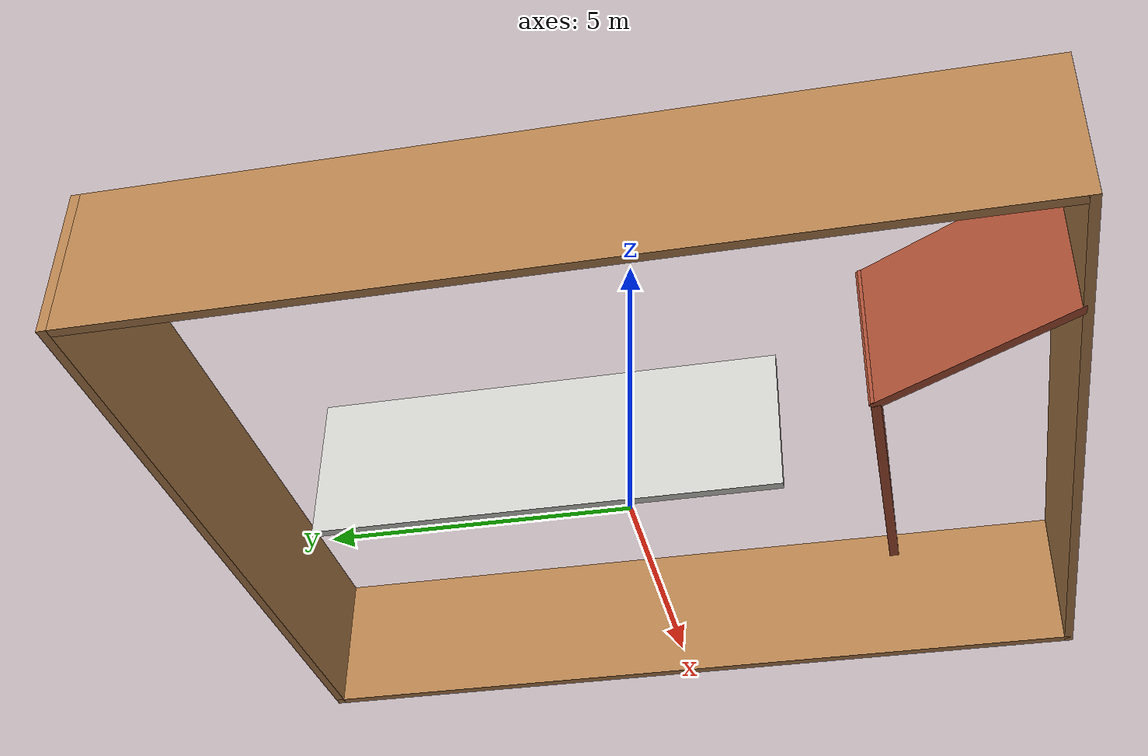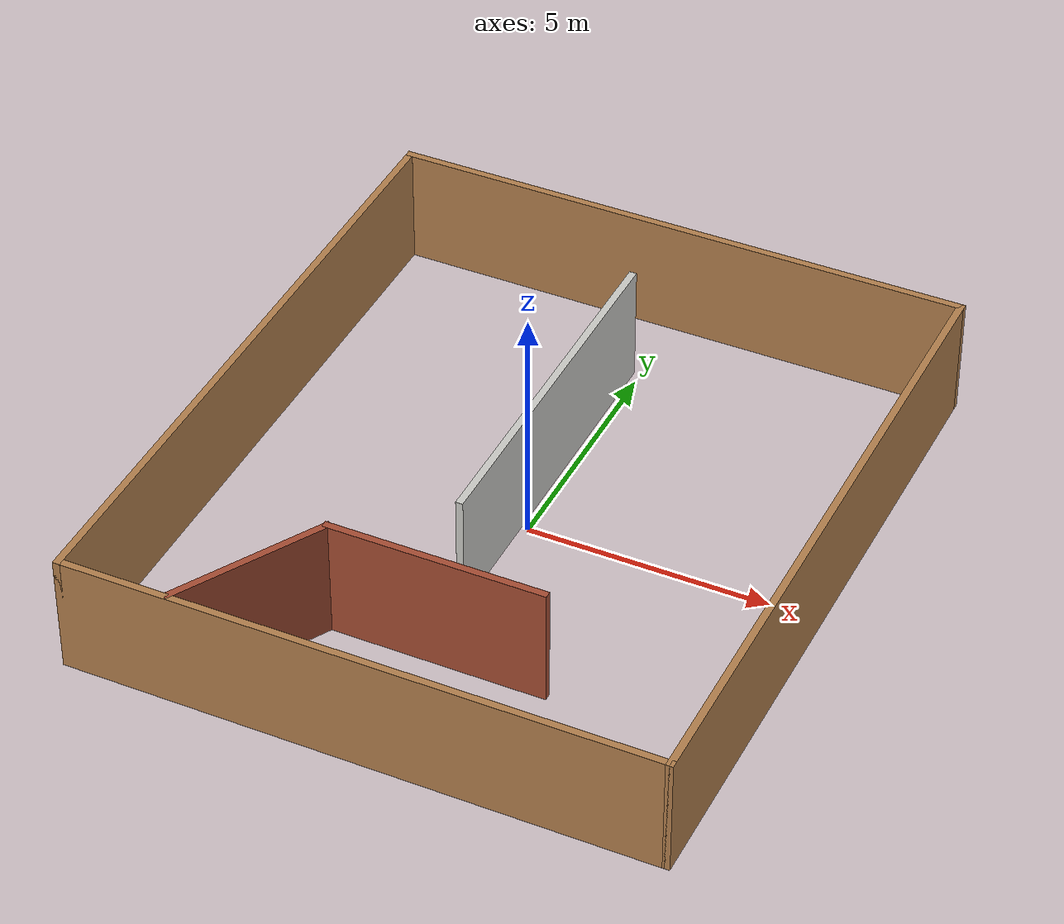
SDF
<?xml version='1.0'?>
<sdf version='1.7'>
  <model name='hotel'>
    <pose>0 0 0 0 -0 0</pose>
    <link name='Wall_12'>
      <collision name='Wall_12_Collision'>
        <geometry>
          <box>
            <size>7.75 0.15 2.5</size>
          </box>
        </geometry>
        <pose>0 0 1.25 0 -0 0</pose>
      </collision>
      <visual name='Wall_12_Visual'>
        <pose>0 0 1.25 0 -0 0</pose>
        <geometry>
          <box>
            <size>7.75 0.15 2.5</size>
          </box>
        </geometry>
        <material>
          <script>
            <uri>file://media/materials/scripts/gazebo.material</uri>
            <name>Gazebo/CeilingTiled</name>
          </script>
          <ambient>1 1 1 1</ambient>
        </material>
        <meta>
          <layer>0</layer>
        </meta>
      </visual>
      <pose>-0.213706 1.39192 0 0 -0 -1.5708</pose>
    </link>
    <link name='Wall_3'>
      <collision name='Wall_3_Collision'>
        <geometry>
          <box>
            <size>14 0.15 2.5</size>
          </box>
        </geometry>
        <pose>0 0 1.25 0 -0 0</pose>
      </collision>
      <visual name='Wall_3_Visual'>
        <pose>0 0 1.25 0 -0 0</pose>
        <geometry>
          <box>
            <size>14 0.15 2.5</size>
          </box>
        </geometry>
        <material>
          <script>
            <uri>file://media/materials/scripts/gazebo.material</uri>
            <name>Gazebo/Wood</name>
          </script>
          <ambient>1 1 1 1</ambient>
        </material>
        <meta>
          <layer>0</layer>
        </meta>
      </visual>
      <pose>-6 -0.075 0 0 -0 -1.5708</pose>
    </link>
    <link name='Wall_4'>
      <collision name='Wall_4_Collision'>
        <geometry>
          <box>
            <size>12.15 0.15 2.5</size>
          </box>
        </geometry>
        <pose>0 0 1.25 0 -0 0</pose>
      </collision>
      <visual name='Wall_4_Visual'>
        <pose>0 0 1.25 0 -0 0</pose>
        <geometry>
          <box>
            <size>12.15 0.15 2.5</size>
          </box>
        </geometry>
        <material>
          <script>
            <uri>file://media/materials/scripts/gazebo.material</uri>
            <name>Gazebo/Wood</name>
          </script>
          <ambient>1 1 1 1</ambient>
        </material>
        <meta>
          <layer>0</layer>
        </meta>
      </visual>
      <pose>0 -7 0 0 -0 0</pose>
    </link>
    <link name='Wall_5'>
      <collision name='Wall_5_Collision'>
        <geometry>
          <box>
            <size>14.15 0.15 2.5</size>
          </box>
        </geometry>
        <pose>0 0 1.25 0 -0 0</pose>
      </collision>
      <visual name='Wall_5_Visual'>
        <pose>0 0 1.25 0 -0 0</pose>
        <geometry>
          <box>
            <size>14.15 0.15 2.5</size>
          </box>
        </geometry>
        <material>
          <script>
            <uri>file://media/materials/scripts/gazebo.material</uri>
            <name>Gazebo/Wood</name>
          </script>
          <ambient>1 1 1 1</ambient>
        </material>
        <meta>
          <layer>0</layer>
        </meta>
      </visual>
      <pose>6 0 0 0 -0 1.5708</pose>
    </link>
    <link name='Wall_6'>
      <collision name='Wall_6_Collision'>
        <geometry>
          <box>
            <size>12.15 0.15 2.5</size>
          </box>
        </geometry>
        <pose>0 0 1.25 0 -0 0</pose>
      </collision>
      <visual name='Wall_6_Visual'>
        <pose>0 0 1.25 0 -0 0</pose>
        <geometry>
          <box>
            <size>12.15 0.15 2.5</size>
          </box>
        </geometry>
        <material>
          <script>
            <uri>file://media/materials/scripts/gazebo.material</uri>
            <name>Gazebo/Wood</name>
          </script>
          <ambient>1 1 1 1</ambient>
        </material>
        <meta>
          <layer>0</layer>
        </meta>
      </visual>
      <pose>0 7 0 0 -0 3.14159</pose>
    </link>
    <link name='Wall_8'>
      <collision name='Wall_8_Collision'>
        <geometry>
          <box>
            <size>3.5 0.15 2.5</size>
          </box>
        </geometry>
        <pose>0 0 1.25 0 -0 0</pose>
      </collision>
      <visual name='Wall_8_Visual'>
        <pose>0 0 1.25 0 -0 0</pose>
        <geometry>
          <box>
            <size>3.5 0.15 2.5</size>
          </box>
        </geometry>
        <material>
          <script>
            <uri>file://media/materials/scripts/gazebo.material</uri>
            <name>Gazebo/Bricks</name>
          </script>
          <ambient>1 1 1 1</ambient>
        </material>
        <meta>
          <layer>0</layer>
        </meta>
      </visual>
      <pose>-2.94282 -5.5 0 0 -0 1.0472</pose>
    </link>
    <link name='Wall_9'>
      <collision name='Wall_9_Collision'>
        <geometry>
          <box>
            <size>4.5 0.15 2.5</size>
          </box>
        </geometry>
        <pose>0 0 1.25 0 -0 0</pose>
      </collision>
      <visual name='Wall_9_Visual'>
        <pose>0 0 1.25 0 -0 0</pose>
        <geometry>
          <box>
            <size>4.5 0.15 2.5</size>
          </box>
        </geometry>
        <material>
          <script>
            <uri>file://media/materials/scripts/gazebo.material</uri>
            <name>Gazebo/Bricks</name>
          </script>
          <ambient>1 1 1 1</ambient>
        </material>
        <meta>
          <layer>0</layer>
        </meta>
      </visual>
      <pose>0.069683 -4.04941 0 0 -0 0</pose>
    </link>
    <static>1</static>
  </model>
</sdf>
